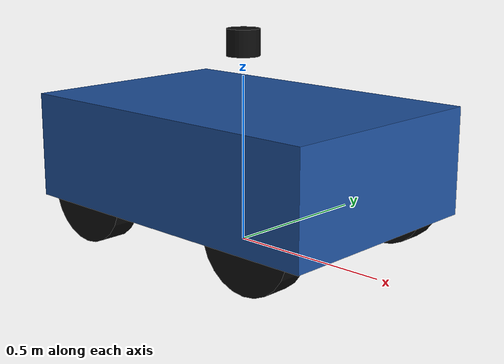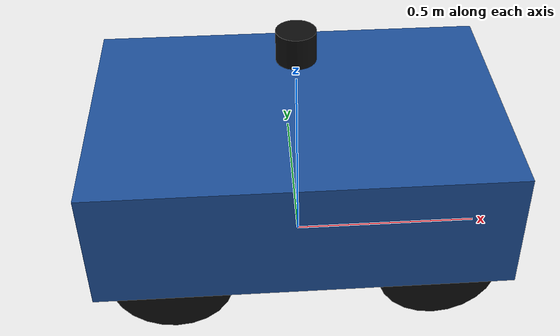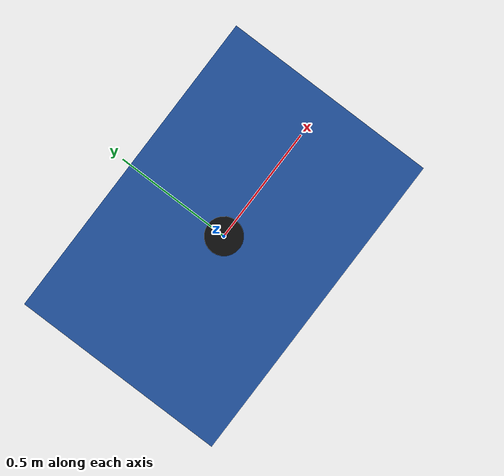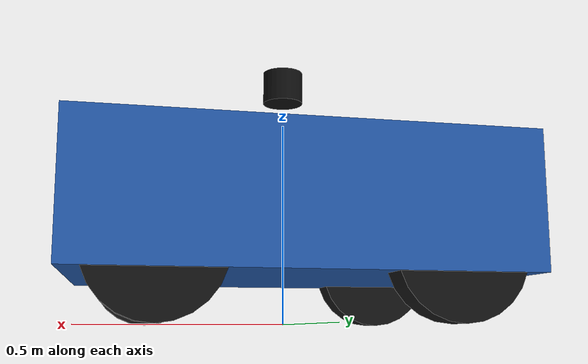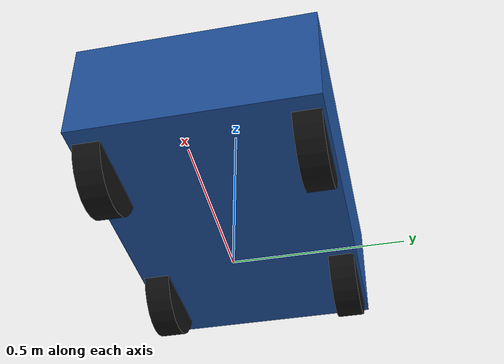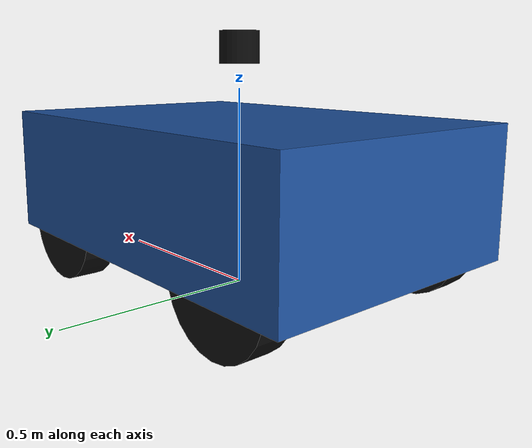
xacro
<?xml version="1.0"?>
<robot xmlns:xacro="http://www.ros.org/wiki/xacro" name="autolabor_m2">
  <xacro:arg name="prefix" default=""/>
  <xacro:arg name="publish_tf" default="true"/>
  <xacro:arg name="dynamics_seed" default="42"/>
  <xacro:arg name="speed_time_constant" default="0.22"/>
  <xacro:arg name="steering_time_constant" default="0.18"/>
  <xacro:arg name="max_acceleration" default="0.60"/>
  <xacro:arg name="max_deceleration" default="0.90"/>
  <xacro:arg name="max_brake_deceleration" default="0.90"/>
  <xacro:arg name="max_emergency_deceleration" default="0.90"/>
  <xacro:arg name="max_steering_rate" default="0.75"/>
  <xacro:arg name="command_delay" default="0.0"/>
  <xacro:arg name="command_jitter" default="0.0"/>
  <xacro:arg name="laser_topic" default="scan"/>
  <xacro:arg name="laser_noise_stddev" default="0.01"/>

  <xacro:arg name="wheel_mu" default="1.0"/>
  <xacro:arg name="wheel_kp" default="4.0"/>
  <xacro:arg name="wheel_ki" default="2.0"/>
  <xacro:arg name="wheel_integral_torque_limit" default="1.5"/>
  <xacro:arg name="wheel_drive_torque_limit" default="8.0"/>
  <xacro:arg name="wheel_brake_torque_limit" default="12.0"/>
  <xacro:arg name="steering_kp" default="60.0"/>
  <xacro:arg name="steering_kd" default="4.0"/>
  <xacro:arg name="steering_torque_limit" default="20.0"/>

  <!-- M12 keeps original geometry/inertia: actual summed mass79.6kg.
       Effort gains/limits and friction remain uncalibrated simulation candidates. -->
  <!-- Simulation candidates only; authoritative provenance is in
       config/simulation_candidates.yaml. -->
  <xacro:property name="prefix" value="$(arg prefix)"/>
  <xacro:property name="body_length" value="1.04"/>
  <xacro:property name="body_width" value="0.70"/>
  <xacro:property name="body_height" value="0.32"/>
  <xacro:property name="body_center_z" value="0.27"/>
  <xacro:property name="wheelbase" value="0.65"/>
  <xacro:property name="track" value="0.60"/>
  <xacro:property name="wheel_radius" value="0.15"/>
  <xacro:property name="wheel_width" value="0.08"/>
  <xacro:property name="mass" value="80.0"/>
  <xacro:property name="max_steer" value="0.4964"/>

  <xacro:include filename="$(find m2_gazebo)/urdf/m2_physical_base.xacro"/>
  <xacro:include filename="$(find m2_gazebo)/urdf/m2_sensors.xacro"/>
  <xacro:include filename="$(find m2_gazebo)/urdf/m2_physical_p05_gazebo.xacro"/>

  <xacro:m2_base/>
  <xacro:m2_sensors/>
  <xacro:m2_physical_p05_gazebo
      publish_tf="$(arg publish_tf)"
      wheel_mu="$(arg wheel_mu)"
      wheel_kp="$(arg wheel_kp)"
      wheel_ki="$(arg wheel_ki)"
      wheel_integral_torque_limit="$(arg wheel_integral_torque_limit)"
      wheel_drive_torque_limit="$(arg wheel_drive_torque_limit)"
      wheel_brake_torque_limit="$(arg wheel_brake_torque_limit)"
      steering_kp="$(arg steering_kp)"
      steering_kd="$(arg steering_kd)"
      steering_torque_limit="$(arg steering_torque_limit)"
      dynamics_seed="$(arg dynamics_seed)"
      speed_time_constant="$(arg speed_time_constant)"
      steering_time_constant="$(arg steering_time_constant)"
      max_acceleration="$(arg max_acceleration)"
      max_deceleration="$(arg max_deceleration)"
      max_brake_deceleration="$(arg max_brake_deceleration)"
      max_emergency_deceleration="$(arg max_emergency_deceleration)"
      max_steering_rate="$(arg max_steering_rate)"
      command_delay="$(arg command_delay)"
      command_jitter="$(arg command_jitter)"
      laser_topic="$(arg laser_topic)"
      laser_noise_stddev="$(arg laser_noise_stddev)"/>
</robot>

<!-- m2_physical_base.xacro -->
<robot xmlns:xacro="http://www.ros.org/wiki/xacro">
  <xacro:macro name="box_inertial" params="mass x y z ox:=0 oy:=0 oz:=0">
    <inertial>
      <origin xyz="${ox} ${oy} ${oz}" rpy="0 0 0"/>
      <mass value="${mass}"/>
      <inertia ixx="${mass*(y*y+z*z)/12.0}" ixy="0" ixz="0"
               iyy="${mass*(x*x+z*z)/12.0}" iyz="0"
               izz="${mass*(x*x+y*y)/12.0}"/>
    </inertial>
  </xacro:macro>

  <xacro:macro name="wheel_inertial" params="mass radius width">
    <inertial>
      <mass value="${mass}"/>
      <inertia ixx="${mass*(3*radius*radius+width*width)/12.0}" ixy="0" ixz="0"
               iyy="${mass*radius*radius/2.0}" iyz="0"
               izz="${mass*(3*radius*radius+width*width)/12.0}"/>
    </inertial>
  </xacro:macro>

  <xacro:macro name="wheel_link" params="name">
    <link name="${prefix}${name}_wheel_link">
      <visual>
        <origin rpy="${pi/2} 0 0"/>
        <geometry><cylinder radius="${wheel_radius}" length="${wheel_width}"/></geometry>
        <material name="m2_tire"><color rgba="0.06 0.06 0.06 1"/></material>
      </visual>
      <!-- Unnamed wheel collision avoids SDFormat9 named-collision extension bug;
           geometry/inertia unchanged from m2_base.xacro. -->
      <collision>
        <origin rpy="${pi/2} 0 0"/>
        <geometry><cylinder radius="${wheel_radius}" length="${wheel_width}"/></geometry>
      </collision>
      <xacro:wheel_inertial mass="3.0" radius="${wheel_radius}" width="${wheel_width}"/>
    </link>
  </xacro:macro>

  <xacro:macro name="front_corner" params="side y sign">
    <link name="${prefix}front_${side}_steer_link">
      <visual><geometry><box size="0.05 0.05 0.12"/></geometry></visual>
      <collision><geometry><box size="0.05 0.05 0.12"/></geometry></collision>
      <xacro:box_inertial mass="0.5" x="0.05" y="0.05" z="0.12"/>
    </link>
    <joint name="${prefix}front_${side}_steer_joint" type="revolute">
      <parent link="${prefix}base_link"/>
      <child link="${prefix}front_${side}_steer_link"/>
      <origin xyz="${wheelbase/2} ${y} ${wheel_radius}" rpy="0 0 0"/>
      <axis xyz="0 0 1"/>
      <limit lower="${-max_steer*1.5}" upper="${max_steer*1.5}" effort="300" velocity="2.0"/>
      <dynamics damping="0.5" friction="0.1"/>
    </joint>
    <xacro:wheel_link name="front_${side}"/>
    <joint name="${prefix}front_${side}_wheel_joint" type="continuous">
      <parent link="${prefix}front_${side}_steer_link"/>
      <child link="${prefix}front_${side}_wheel_link"/>
      <axis xyz="0 1 0"/>
      <limit effort="500" velocity="30"/>
      <dynamics damping="0.05" friction="0.01"/>
    </joint>
  </xacro:macro>

  <xacro:macro name="rear_corner" params="side y">
    <xacro:wheel_link name="rear_${side}"/>
    <joint name="${prefix}rear_${side}_wheel_joint" type="continuous">
      <parent link="${prefix}base_link"/>
      <child link="${prefix}rear_${side}_wheel_link"/>
      <origin xyz="${-wheelbase/2} ${y} ${wheel_radius}" rpy="0 0 0"/>
      <axis xyz="0 1 0"/>
      <limit effort="500" velocity="30"/>
      <dynamics damping="0.05" friction="0.01"/>
    </joint>
  </xacro:macro>

  <xacro:macro name="m2_base">
    <!-- Keep base_link as the TF/kinematic root. The fixed chassis child owns
         the body inertia so robot_state_publisher/KDL does not drop root inertia. -->
    <link name="${prefix}base_link"/>
    <link name="${prefix}chassis_link">
      <visual>
        <origin xyz="0 0 ${body_center_z}"/>
        <geometry><box size="${body_length} ${body_width} ${body_height}"/></geometry>
        <material name="m2_body"><color rgba="0.12 0.32 0.62 1"/></material>
      </visual>
      <collision name="${prefix}chassis_collision">
        <origin xyz="0 0 ${body_center_z}"/>
        <geometry><box size="${body_length} ${body_width} ${body_height}"/></geometry>
      </collision>
      <xacro:box_inertial mass="${mass-14.0}" x="${body_length}" y="${body_width}"
                           z="${body_height}" oz="${body_center_z}"/>
    </link>
    <joint name="${prefix}chassis_joint" type="fixed">
      <parent link="${prefix}base_link"/>
      <child link="${prefix}chassis_link"/>
    </joint>

    <xacro:front_corner side="left" y="${track/2}" sign="1"/>
    <xacro:front_corner side="right" y="${-track/2}" sign="-1"/>
    <xacro:rear_corner side="left" y="${track/2}"/>
    <xacro:rear_corner side="right" y="${-track/2}"/>
  </xacro:macro>
</robot>

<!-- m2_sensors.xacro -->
<robot xmlns:xacro="http://www.ros.org/wiki/xacro">
  <xacro:macro name="m2_sensors">
    <link name="${prefix}laser_link">
      <visual><geometry><cylinder radius="0.05" length="0.08"/></geometry><material name="sensor_black"><color rgba="0.05 0.05 0.05 1"/></material></visual>
      <collision><geometry><cylinder radius="0.05" length="0.08"/></geometry></collision>
      <xacro:wheel_inertial mass="0.5" radius="0.05" width="0.08"/>
    </link>
    <joint name="${prefix}laser_joint" type="fixed">
      <parent link="${prefix}base_link"/>
      <child link="${prefix}laser_link"/>
      <origin xyz="0 0 0.60" rpy="0 0 0"/>
    </joint>

    <link name="${prefix}imu_link">
      <visual><geometry><box size="0.04 0.04 0.02"/></geometry></visual>
      <collision><geometry><box size="0.04 0.04 0.02"/></geometry></collision>
      <xacro:box_inertial mass="0.1" x="0.04" y="0.04" z="0.02"/>
    </link>
    <joint name="${prefix}imu_joint" type="fixed">
      <parent link="${prefix}base_link"/>
      <child link="${prefix}imu_link"/>
      <origin xyz="0 0 0.40" rpy="0 0 0"/>
    </joint>
  </xacro:macro>
</robot>
